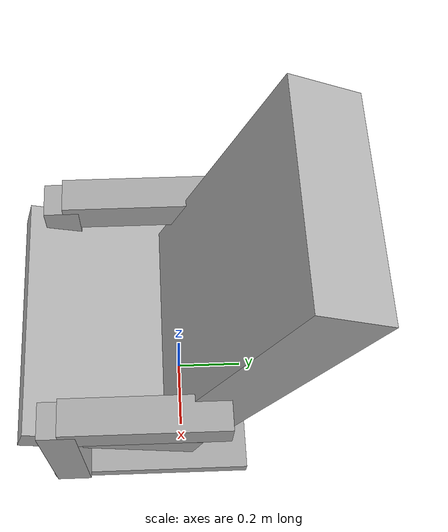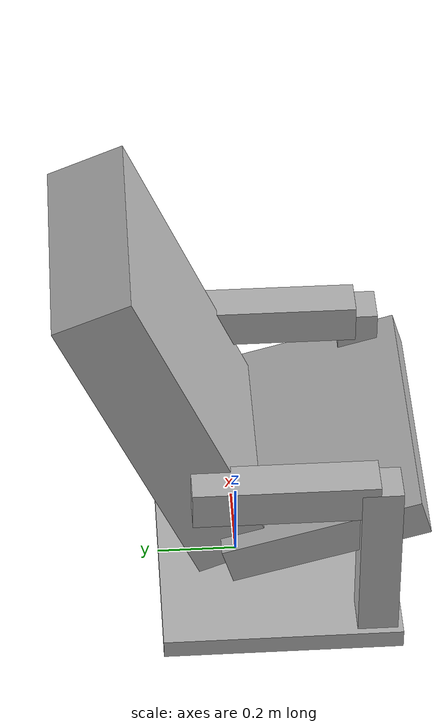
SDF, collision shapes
<?xml version='1.0'?>
<!-- this file was mainly automatically generated by gazebo model editor with minor modifications
such as removing harcoded paths and material script tag to load mesh UV mapping -->

<sdf version='1.6'>
  <model name='tv_chair'>
    <link name='link_0'>
      <pose frame=''>0 0 0 0 0 0</pose>
      <inertial>
        <mass>10</mass>
        <pose frame=''>0 0 0.5 0 0 0</pose>
        <inertia>
          <ixx>1.0833329</ixx>
          <ixy>0</ixy>
          <ixz>0</ixz>
          <iyy>1.0833329</iyy>
          <iyz>0</iyz>
          <izz>0.81666634</izz>
        </inertia>
      </inertial>
      <visual name='visual'>
        <pose frame=''>0 0 0 0 -0 0</pose>
        <geometry>
          <mesh>
            <uri>file://isr-testbed/tv_chair/tv_chair.dae</uri>
            <scale>1 1 1</scale>
          </mesh>
        </geometry>
        <material>
          <lighting>1</lighting>
          <script>
            <uri>file://media/materials/scripts/gazebo.material</uri>
            <name>Gazebo/DepthMapVS</name> <!-- change this one to DepthMapVS to load mesh UV mapping -->
          </script>
          <ambient>0.3 0.3 0.3 1</ambient>
          <diffuse>0.7 0.7 0.7 1</diffuse>
          <specular>0.01 0.01 0.01 1</specular>
          <emissive>0 0 0 1</emissive>
        </material>
        <cast_shadows>1</cast_shadows>
        <transparency>0</transparency>
      </visual>
      <collision name='collision_seat'>
        <laser_retro>0</laser_retro>
        <max_contacts>10</max_contacts>
        <pose frame=''>0 -0.2 0.35 -0.28 0 0</pose>
        <geometry>
          <box>
            <size>0.7 0.5 0.1</size>
          </box>
        </geometry>
        <surface>
          <friction>
            <ode>
              <mu>1</mu>
              <mu2>1</mu2>
              <fdir1>0 0 0</fdir1>
              <slip1>0</slip1>
              <slip2>0</slip2>
            </ode>
            <torsional>
              <coefficient>1</coefficient>
              <patch_radius>0</patch_radius>
              <surface_radius>0</surface_radius>
              <use_patch_radius>1</use_patch_radius>
              <ode>
                <slip>0</slip>
              </ode>
            </torsional>
          </friction>
          <bounce>
            <restitution_coefficient>0</restitution_coefficient>
            <threshold>1e+06</threshold>
          </bounce>
          <contact>
            <collide_without_contact>0</collide_without_contact>
            <collide_without_contact_bitmask>1</collide_without_contact_bitmask>
            <collide_bitmask>1</collide_bitmask>
            <ode>
              <soft_cfm>0</soft_cfm>
              <soft_erp>0.2</soft_erp>
              <kp>1e+13</kp>
              <kd>1</kd>
              <max_vel>0.01</max_vel>
              <min_depth>0</min_depth>
            </ode>
            <bullet>
              <split_impulse>1</split_impulse>
              <split_impulse_penetration_threshold>-0.01</split_impulse_penetration_threshold>
              <soft_cfm>0</soft_cfm>
              <soft_erp>0.2</soft_erp>
              <kp>1e+13</kp>
              <kd>1</kd>
            </bullet>
          </contact>
        </surface>
      </collision>
      <collision name='collision_base'>
        <laser_retro>0</laser_retro>
        <max_contacts>10</max_contacts>
        <pose frame=''>0 -0.1 0 0 -0 0</pose>
        <geometry>
          <box>
            <size>0.7 0.6 0.05</size>
          </box>
        </geometry>
        <surface>
          <friction>
            <ode>
              <mu>1</mu>
              <mu2>1</mu2>
              <fdir1>0 0 0</fdir1>
              <slip1>0</slip1>
              <slip2>0</slip2>
            </ode>
            <torsional>
              <coefficient>1</coefficient>
              <patch_radius>0</patch_radius>
              <surface_radius>0</surface_radius>
              <use_patch_radius>1</use_patch_radius>
              <ode>
                <slip>0</slip>
              </ode>
            </torsional>
          </friction>
          <bounce>
            <restitution_coefficient>0</restitution_coefficient>
            <threshold>1e+06</threshold>
          </bounce>
          <contact>
            <collide_without_contact>0</collide_without_contact>
            <collide_without_contact_bitmask>1</collide_without_contact_bitmask>
            <collide_bitmask>1</collide_bitmask>
            <ode>
              <soft_cfm>0</soft_cfm>
              <soft_erp>0.2</soft_erp>
              <kp>1e+13</kp>
              <kd>1</kd>
              <max_vel>0.01</max_vel>
              <min_depth>0</min_depth>
            </ode>
            <bullet>
              <split_impulse>1</split_impulse>
              <split_impulse_penetration_threshold>-0.01</split_impulse_penetration_threshold>
              <soft_cfm>0</soft_cfm>
              <soft_erp>0.2</soft_erp>
              <kp>1e+13</kp>
              <kd>1</kd>
            </bullet>
          </contact>
        </surface>
      </collision>
      <collision name='collision_back'>
        <laser_retro>0</laser_retro>
        <max_contacts>10</max_contacts>
        <pose frame=''>0 0.18 0.65 -0.4 0 0</pose>
        <geometry>
          <box>
            <size>0.6 0.2 0.85</size>
          </box>
        </geometry>
        <surface>
          <friction>
            <ode>
              <mu>1</mu>
              <mu2>1</mu2>
              <fdir1>0 0 0</fdir1>
              <slip1>0</slip1>
              <slip2>0</slip2>
            </ode>
            <torsional>
              <coefficient>1</coefficient>
              <patch_radius>0</patch_radius>
              <surface_radius>0</surface_radius>
              <use_patch_radius>1</use_patch_radius>
              <ode>
                <slip>0</slip>
              </ode>
            </torsional>
          </friction>
          <bounce>
            <restitution_coefficient>0</restitution_coefficient>
            <threshold>1e+06</threshold>
          </bounce>
          <contact>
            <collide_without_contact>0</collide_without_contact>
            <collide_without_contact_bitmask>1</collide_without_contact_bitmask>
            <collide_bitmask>1</collide_bitmask>
            <ode>
              <soft_cfm>0</soft_cfm>
              <soft_erp>0.2</soft_erp>
              <kp>1e+13</kp>
              <kd>1</kd>
              <max_vel>0.01</max_vel>
              <min_depth>0</min_depth>
            </ode>
            <bullet>
              <split_impulse>1</split_impulse>
              <split_impulse_penetration_threshold>-0.01</split_impulse_penetration_threshold>
              <soft_cfm>0</soft_cfm>
              <soft_erp>0.2</soft_erp>
              <kp>1e+13</kp>
              <kd>1</kd>
            </bullet>
          </contact>
        </surface>
      </collision>
      <collision name='collision_leg1'>
        <laser_retro>0</laser_retro>
        <max_contacts>10</max_contacts>
        <pose frame=''>0.33 -0.33 0.3 0 0 0</pose>
        <geometry>
          <box>
            <size>0.1 0.1 0.45</size>
          </box>
        </geometry>
        <surface>
          <friction>
            <ode>
              <mu>1</mu>
              <mu2>1</mu2>
              <fdir1>0 0 0</fdir1>
              <slip1>0</slip1>
              <slip2>0</slip2>
            </ode>
            <torsional>
              <coefficient>1</coefficient>
              <patch_radius>0</patch_radius>
              <surface_radius>0</surface_radius>
              <use_patch_radius>1</use_patch_radius>
              <ode>
                <slip>0</slip>
              </ode>
            </torsional>
          </friction>
          <bounce>
            <restitution_coefficient>0</restitution_coefficient>
            <threshold>1e+06</threshold>
          </bounce>
          <contact>
            <collide_without_contact>0</collide_without_contact>
            <collide_without_contact_bitmask>1</collide_without_contact_bitmask>
            <collide_bitmask>1</collide_bitmask>
            <ode>
              <soft_cfm>0</soft_cfm>
              <soft_erp>0.2</soft_erp>
              <kp>1e+13</kp>
              <kd>1</kd>
              <max_vel>0.01</max_vel>
              <min_depth>0</min_depth>
            </ode>
            <bullet>
              <split_impulse>1</split_impulse>
              <split_impulse_penetration_threshold>-0.01</split_impulse_penetration_threshold>
              <soft_cfm>0</soft_cfm>
              <soft_erp>0.2</soft_erp>
              <kp>1e+13</kp>
              <kd>1</kd>
            </bullet>
          </contact>
        </surface>
      </collision>
      <collision name='collision_leg2'>
        <laser_retro>0</laser_retro>
        <max_contacts>10</max_contacts>
        <pose frame=''>-0.33 -0.33 0.3 0 0 0</pose>
        <geometry>
          <box>
            <size>0.1 0.1 0.45</size>
          </box>
        </geometry>
        <surface>
          <friction>
            <ode>
              <mu>1</mu>
              <mu2>1</mu2>
              <fdir1>0 0 0</fdir1>
              <slip1>0</slip1>
              <slip2>0</slip2>
            </ode>
            <torsional>
              <coefficient>1</coefficient>
              <patch_radius>0</patch_radius>
              <surface_radius>0</surface_radius>
              <use_patch_radius>1</use_patch_radius>
              <ode>
                <slip>0</slip>
              </ode>
            </torsional>
          </friction>
          <bounce>
            <restitution_coefficient>0</restitution_coefficient>
            <threshold>1e+06</threshold>
          </bounce>
          <contact>
            <collide_without_contact>0</collide_without_contact>
            <collide_without_contact_bitmask>1</collide_without_contact_bitmask>
            <collide_bitmask>1</collide_bitmask>
            <ode>
              <soft_cfm>0</soft_cfm>
              <soft_erp>0.2</soft_erp>
              <kp>1e+13</kp>
              <kd>1</kd>
              <max_vel>0.01</max_vel>
              <min_depth>0</min_depth>
            </ode>
            <bullet>
              <split_impulse>1</split_impulse>
              <split_impulse_penetration_threshold>-0.01</split_impulse_penetration_threshold>
              <soft_cfm>0</soft_cfm>
              <soft_erp>0.2</soft_erp>
              <kp>1e+13</kp>
              <kd>1</kd>
            </bullet>
          </contact>
        </surface>
      </collision>
      <collision name='collision_arm1'>
        <laser_retro>0</laser_retro>
        <max_contacts>10</max_contacts>
        <pose frame=''>-0.33 -0.1 0.5 0 0 0</pose>
        <geometry>
          <box>
            <size>0.1 0.45 0.1</size>
          </box>
        </geometry>
        <surface>
          <friction>
            <ode>
              <mu>1</mu>
              <mu2>1</mu2>
              <fdir1>0 0 0</fdir1>
              <slip1>0</slip1>
              <slip2>0</slip2>
            </ode>
            <torsional>
              <coefficient>1</coefficient>
              <patch_radius>0</patch_radius>
              <surface_radius>0</surface_radius>
              <use_patch_radius>1</use_patch_radius>
              <ode>
                <slip>0</slip>
              </ode>
            </torsional>
          </friction>
          <bounce>
            <restitution_coefficient>0</restitution_coefficient>
            <threshold>1e+06</threshold>
          </bounce>
          <contact>
            <collide_without_contact>0</collide_without_contact>
            <collide_without_contact_bitmask>1</collide_without_contact_bitmask>
            <collide_bitmask>1</collide_bitmask>
            <ode>
              <soft_cfm>0</soft_cfm>
              <soft_erp>0.2</soft_erp>
              <kp>1e+13</kp>
              <kd>1</kd>
              <max_vel>0.01</max_vel>
              <min_depth>0</min_depth>
            </ode>
            <bullet>
              <split_impulse>1</split_impulse>
              <split_impulse_penetration_threshold>-0.01</split_impulse_penetration_threshold>
              <soft_cfm>0</soft_cfm>
              <soft_erp>0.2</soft_erp>
              <kp>1e+13</kp>
              <kd>1</kd>
            </bullet>
          </contact>
        </surface>
      </collision>
      <collision name='collision_arm2'>
        <laser_retro>0</laser_retro>
        <max_contacts>10</max_contacts>
        <pose frame=''>0.33 -0.1 0.5 0 0 0</pose>
        <geometry>
          <box>
            <size>0.1 0.45 0.1</size>
          </box>
        </geometry>
        <surface>
          <friction>
            <ode>
              <mu>1</mu>
              <mu2>1</mu2>
              <fdir1>0 0 0</fdir1>
              <slip1>0</slip1>
              <slip2>0</slip2>
            </ode>
            <torsional>
              <coefficient>1</coefficient>
              <patch_radius>0</patch_radius>
              <surface_radius>0</surface_radius>
              <use_patch_radius>1</use_patch_radius>
              <ode>
                <slip>0</slip>
              </ode>
            </torsional>
          </friction>
          <bounce>
            <restitution_coefficient>0</restitution_coefficient>
            <threshold>1e+06</threshold>
          </bounce>
          <contact>
            <collide_without_contact>0</collide_without_contact>
            <collide_without_contact_bitmask>1</collide_without_contact_bitmask>
            <collide_bitmask>1</collide_bitmask>
            <ode>
              <soft_cfm>0</soft_cfm>
              <soft_erp>0.2</soft_erp>
              <kp>1e+13</kp>
              <kd>1</kd>
              <max_vel>0.01</max_vel>
              <min_depth>0</min_depth>
            </ode>
            <bullet>
              <split_impulse>1</split_impulse>
              <split_impulse_penetration_threshold>-0.01</split_impulse_penetration_threshold>
              <soft_cfm>0</soft_cfm>
              <soft_erp>0.2</soft_erp>
              <kp>1e+13</kp>
              <kd>1</kd>
            </bullet>
          </contact>
        </surface>
      </collision>
    </link>
    <static>0</static>
    <allow_auto_disable>1</allow_auto_disable>
  </model>
</sdf>
